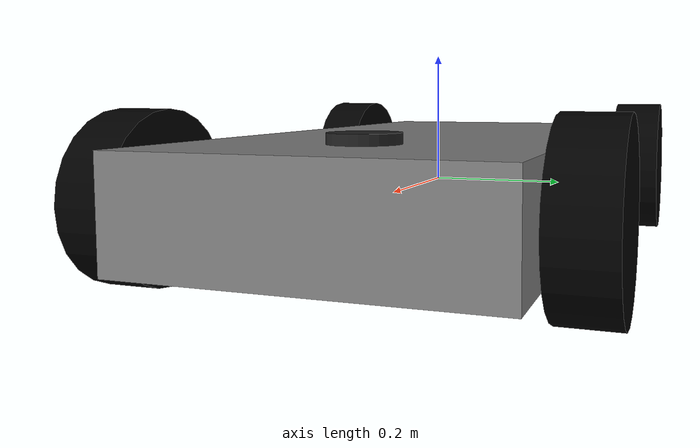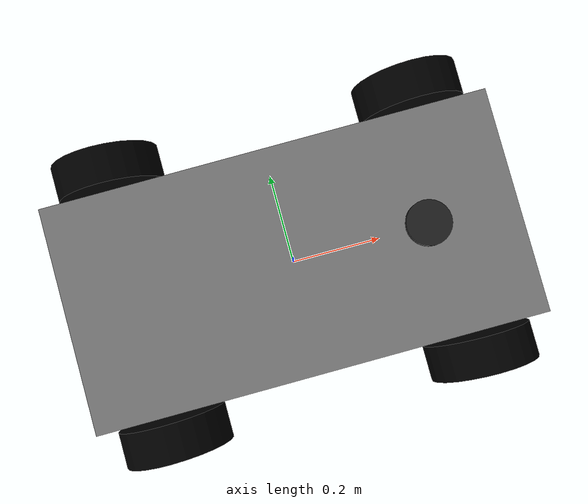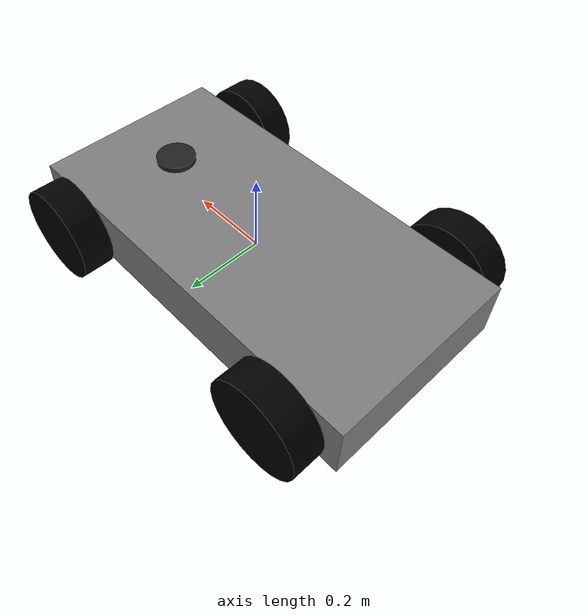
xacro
<?xml version='1.0'?>

<robot name="cart" xmlns:xacro="http://www.ros.org/wiki/xacro">

  <xacro:include filename="$(find cart_navigation)/urdf/cart_control.gazebo" />
  <xacro:include filename="$(find cart_navigation)/urdf/material.xacro" />

  <link name="base_footprint" />

  <joint name="base_footprint_joint" type="fixed">
    <origin xyz="0 0 0" rpy="0 0 0" />
    <parent link="base_footprint" />
    <child link="base_link" />
  </joint>
  <link name='base_link'>
    <pose>0 0 0 0 0 0</pose>
    <inertial>
      <mass value="9.0" />
      <origin xyz="0.0 0 0" rpy="0 0 0" />
      <inertia ixx="0.204375" ixy="0" ixz="0" iyy="0.766875" iyz="0" izz="0.9375" />
    </inertial>
    <collision name='collision'>
      <origin xyz="0 0 0" rpy="0 0 0" />
      <geometry>
        <box size="1 .5 .15" />
      </geometry>
    </collision>
    <visual name='base_link_visual'>
      <origin xyz="0 0 0" rpy="0 0 0" />
      <geometry>
        <box size="1 .5 .15" />
      </geometry>
      <material name="grey">
        <color rgba="0.5 0.5 0.5 1.0" />
      </material>
    </visual>
  </link>

  <joint type="continuous" name="front_left_wheel_joint">
    <origin xyz="0.35 0.3 0" rpy="0 0 0" />
    <child link="front_left_wheel" />
    <parent link="base_link" />
    <axis xyz="0 1 0" rpy="0 0 0" />
    <limit effort="100" velocity="10" />
    <dynamics damping="3.0" friction="3.0" />
  </joint>
  <link name='front_left_wheel'>
    <inertial>
      <mass value="1.0" />
      <origin xyz="0 0 0" rpy="0 1.5707 1.5707" />
      <inertia ixx="0.004133" ixy="0" ixz="0" iyy="0.004133" iyz="0" izz="0.0072" />
    </inertial>
    <collision>
      <origin xyz="0 0 0" rpy="0 1.5707 1.5707" />
      <geometry>
        <cylinder radius=".12" length=".08" />
      </geometry>
    </collision>
    <visual name='front_left_wheel_visual'>
      <origin xyz="0 0 0" rpy="0 1.5707 1.5707" />
      <geometry>
        <cylinder radius=".12" length=".08" />
      </geometry>
      <material name="black">
        <color rgba="0.0 0.0 0.0 1.0" />
      </material>
    </visual>
  </link>

  <joint type="continuous" name="rear_left_wheel_joint">
    <origin xyz="-0.35 0.3 0" rpy="0 0 0" />
    <child link="rear_left_wheel" />
    <parent link="base_link" />
    <axis xyz="0 1 0" rpy="0 0 0" />
    <limit effort="100" velocity="10" />
    <dynamics damping="3.0" friction="3.0" />
  </joint>
  <link name='rear_left_wheel'>
    <inertial>
      <mass value="1.0" />
      <origin xyz="0 0 0" rpy="0 1.5707 1.5707" />
      <inertia ixx="0.004133" ixy="0" ixz="0" iyy="0.004133" iyz="0" izz="0.0072" />
    </inertial>
    <collision>
      <origin xyz="0 0 0" rpy="0 1.5707 1.5707" />
      <geometry>
        <cylinder radius=".12" length=".08" />
      </geometry>
    </collision>
    <visual name='rear_left_wheel_visual'>
      <origin xyz="0 0 0" rpy="0 1.5707 1.5707" />
      <geometry>
        <cylinder radius=".12" length=".08" />
      </geometry>
      <material name="black">
        <color rgba="0.0 0.0 0.0 1.0" />
      </material>
    </visual>
  </link>

  <joint type="continuous" name="front_right_wheel_joint">
    <origin xyz="0.35 -0.3 0" rpy="0 0 0" />
    <child link="front_right_wheel" />
    <parent link="base_link" />
    <axis xyz="0 1 0" rpy="0 0 0" />
    <limit effort="100" velocity="10" />
    <dynamics damping="3.0" friction="3.0" />
  </joint>
  <link name='front_right_wheel'>
    <inertial>
      <mass value="1.0" />
      <origin xyz="0 0 0" rpy="0 1.5707 1.5707" />
      <inertia ixx="0.004133" ixy="0" ixz="0" iyy="0.004133" iyz="0" izz="0.0072" />
    </inertial>
    <collision>
      <origin xyz="0 0 0" rpy="0 1.5707 1.5707" />
      <geometry>
        <cylinder radius=".12" length=".08" />
      </geometry>
    </collision>
    <visual name='front_right_wheel_visual'>
      <origin xyz="0 0 0" rpy="0 1.5707 1.5707" />
      <geometry>
        <cylinder radius=".12" length=".08" />
      </geometry>
      <material name="black">
        <color rgba="0.0 0.0 0.0 1.0" />
      </material>
    </visual>
  </link>

  <joint type="continuous" name="rear_right_wheel_joint">
    <origin xyz="-0.35 -0.3 0" rpy="0 0 0" />
    <child link="rear_right_wheel" />
    <parent link="base_link" />
    <axis xyz="0 1 0" rpy="0 0 0" />
    <limit effort="100" velocity="10" />
    <dynamics damping="3.0" friction="3.0" />
  </joint>
  <link name='rear_right_wheel'>
    <inertial>
      <mass value="1.0" />
      <origin xyz="0 0 0" rpy="0 1.5707 1.5707" />
      <inertia ixx="0.004133" ixy="0" ixz="0" iyy="0.004133" iyz="0" izz="0.0072" />
    </inertial>
    <collision>
      <origin xyz="0 0 0" rpy="0 1.5707 1.5707" />
      <geometry>
        <cylinder radius=".12" length=".08" />
      </geometry>
    </collision>
    <visual name='rear_right_wheel_visual'>
      <origin xyz="0 0 0" rpy="0 1.5707 1.5707" />
      <geometry>
        <cylinder radius=".12" length=".08" />
      </geometry>
      <material name="black">
        <color rgba="0.0 0.0 0.0 1.0" />
      </material>
    </visual>
  </link>

  <joint name="laser_joint" type="fixed">
    <parent link="base_link" />
    <child link="laser_frame" />
    <origin xyz="0.3 0 0.07" rpy="0 0 0" />
  </joint>
  <link name="laser_frame">
    <inertial>
      <mass value="0.1" />
      <origin xyz="0 0 0" rpy="0 0 0" />
      <inertia ixx="0.0001" ixy="0.0" ixz="0.0" iyy="0.0001" iyz="0.0" izz="0.0002" />
    </inertial>
    <visual>
      <origin xyz="0 0 0" />
      <geometry>
        <cylinder length="0.04" radius="0.05" />
      </geometry>
      <material name="laser_material">
        <color rgba="0.13 0.13 0.13 1.0" />
      </material>
    </visual>
    <collision>
      <origin xyz="0 0 0" />
      <geometry>
        <cylinder length="0.04" radius="0.05" />
      </geometry>
    </collision>
  </link>

  <!-- STEP 6 - Gazebo frictions and colors -->
<gazebo reference="front_left_wheel">
  <mu1>1.5</mu1>
  <mu2>0.7</mu2>
  <kp>100000.0</kp>
  <kd>3000.0</kd>
  <minDepth>0.003</minDepth>
  <fdir1>0 1 0</fdir1>
</gazebo>

<gazebo reference="front_right_wheel">
  <mu1>1.5</mu1>
  <mu2>0.7</mu2>
  <kp>100000.0</kp>
  <kd>3000.0</kd>
  <minDepth>0.003</minDepth>
  <fdir1>0 1 0</fdir1>
</gazebo>

<gazebo reference="rear_left_wheel">
  <mu1>1.5</mu1>
  <mu2>0.7</mu2>
  <kp>100000.0</kp>
  <kd>3000.0</kd>
  <minDepth>0.003</minDepth>
  <fdir1>0 1 0</fdir1>
</gazebo>

<gazebo reference="rear_right_wheel">
  <mu1>1.5</mu1>
  <mu2>0.7</mu2>
  <kp>100000.0</kp>
  <kd>3000.0</kd>
  <minDepth>0.003</minDepth>
  <fdir1>0 1 0</fdir1>
</gazebo>

<gazebo reference="base_link">
  <mu1>0.1</mu1>
  <mu2>0.1</mu2>
</gazebo>

<gazebo reference="laser_frame">
  <sensor name="laser" type="gpu_lidar">
      <pose>0 0 0 0 0 0</pose>
      <always_on>true</always_on>
      <visualize>true</visualize>
      <update_rate>50</update_rate>
      <topic>scan</topic>
      <gz_frame_id>laser_frame</gz_frame_id>
      <lidar>
        <scan>
          <horizontal>
            <samples>720</samples>
            <min_angle>-3.14</min_angle>
            <max_angle>3.14</max_angle>
          </horizontal>
        </scan>
        <range>
          <min>0.3</min>
          <max>12</max>
        </range>
      </lidar>
  </sensor>
</gazebo>
</robot>

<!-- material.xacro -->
<robot>

  <material name="black">
    <color rgba="0.0 0.0 0.0 1.0"/>
  </material>

  <material name="white">
    <color rgba="1.0 1.0 1.0 1.0"/>
  </material>

  <material name="red">
    <color rgba="0.8 0.0 0.0 1.0"/>
  </material>

  <material name="blue">
    <color rgba="0.0 0.0 0.8 1.0"/>
  </material>

  <material name="green">
    <color rgba="0.0 0.8 0.0 1.0"/>
  </material>

  <material name="grey">
    <color rgba="0.5 0.5 0.5 1.0"/>
  </material>
</robot>
